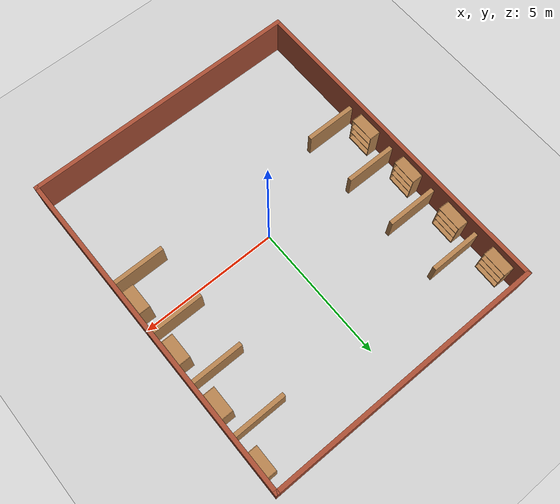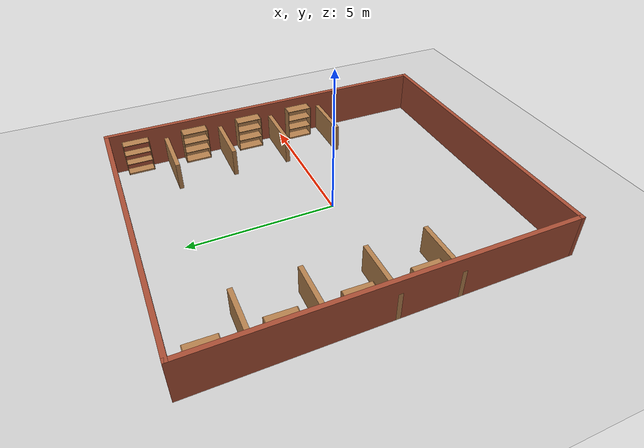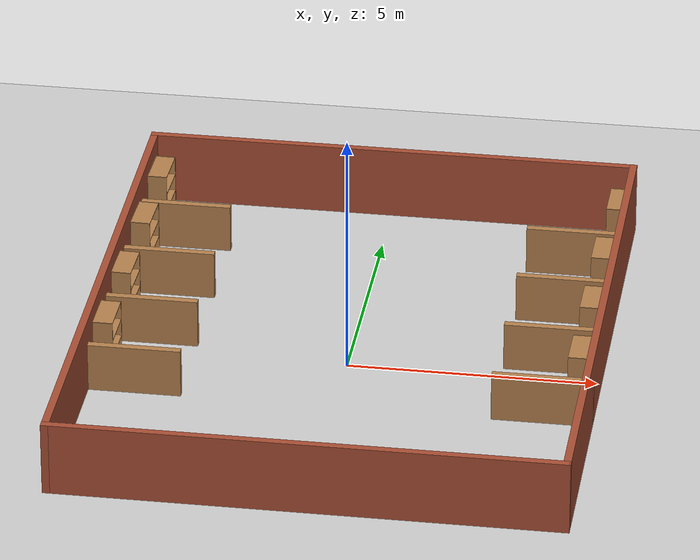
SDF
<sdf version="1.7">
 <world name="default">
  <model name="ground_plane">
   <static>1</static>
   <link name="link">
    <collision name="collision">
     <geometry><plane><normal>0 0 1</normal><size>100 100</size></plane></geometry>
     <surface>
      <contact><collide_bitmask>65535</collide_bitmask></contact>
      <friction><ode><mu>100</mu><mu2>50</mu2></ode></friction>
     </surface>
    </collision>
    <visual name="visual">
     <cast_shadows>0</cast_shadows>
     <geometry><plane><normal>0 0 1</normal><size>100 100</size></plane></geometry>
     <material>
      <script><uri>file://media/materials/scripts/gazebo.material</uri><name>Gazebo/Grey</name></script>
     </material>
    </visual>
   </link>
  </model>
  <gravity>0 0 -9.8</gravity>
  <magnetic_field>6e-06 2.3e-05 -4.2e-05</magnetic_field>
  <atmosphere type="adiabatic"/>
  <physics type="ode">
   <max_step_size>0.001</max_step_size>
   <real_time_factor>1</real_time_factor>
   <real_time_update_rate>1000</real_time_update_rate>
  </physics>
  <scene><ambient>0.4 0.4 0.4 1</ambient><background>0.7 0.7 0.7 1</background><shadows>1</shadows></scene>
  <audio><device>default</device></audio>
  <spherical_coordinates>
   <surface_model>EARTH_WGS84</surface_model>
   <latitude_deg>0</latitude_deg>
   <longitude_deg>0</longitude_deg>
   <elevation>0</elevation>
   <heading_deg>0</heading_deg>
  </spherical_coordinates>
  <model name="SDP_world">
   <pose>0.006205 0.41004 0 0 -0 0</pose>
   <link name="Wall_0">
    <collision name="Wall_0_Collision">
     <geometry><box><size>10.15 0.15 1.5</size></box></geometry>
     <pose>0 0 0.75 0 -0 0</pose>
    </collision>
    <visual name="Wall_0_Visual">
     <pose>0 0 0.75 0 -0 0</pose>
     <geometry><box><size>10.15 0.15 1.5</size></box></geometry>
     <material>
      <script><uri>file://media/materials/scripts/gazebo.material</uri><name>Gazebo/Bricks</name></script>
      <ambient>1 1 1 1</ambient>
     </material>
     <meta><layer>0</layer></meta>
    </visual>
    <pose>0 -6 0 0 -0 3.14159</pose>
   </link>
   <link name="Wall_13">
    <collision name="Wall_13_Collision">
     <geometry><box><size>10.15 0.15 1.5</size></box></geometry>
     <pose>0 0 0.75 0 -0 0</pose>
    </collision>
    <visual name="Wall_13_Visual">
     <pose>0 0 0.75 0 -0 0</pose>
     <geometry><box><size>10.15 0.15 1.5</size></box></geometry>
     <material>
      <script><uri>file://media/materials/scripts/gazebo.material</uri><name>Gazebo/Bricks</name></script>
      <ambient>1 1 1 1</ambient>
     </material>
     <meta><layer>0</layer></meta>
    </visual>
    <pose>0 6 0 0 -0 0</pose>
   </link>
   <link name="Wall_14">
    <collision name="Wall_14_Collision">
     <geometry><box><size>12.15 0.15 1.5</size></box></geometry>
     <pose>0 0 0.75 0 -0 0</pose>
    </collision>
    <visual name="Wall_14_Visual">
     <pose>0 0 0.75 0 -0 0</pose>
     <geometry><box><size>12.15 0.15 1.5</size></box></geometry>
     <material>
      <script><uri>file://media/materials/scripts/gazebo.material</uri><name>Gazebo/Bricks</name></script>
      <ambient>1 1 1 1</ambient>
     </material>
     <meta><layer>0</layer></meta>
    </visual>
    <pose>5 0 0 0 -0 -1.5708</pose>
   </link>
   <link name="Wall_28">
    <collision name="Wall_28_Collision">
     <geometry><box><size>2 0.15 1</size></box></geometry>
     <pose>0 0 0.5 0 -0 0</pose>
    </collision>
    <visual name="Wall_28_Visual">
     <pose>0 0 0.5 0 -0 0</pose>
     <geometry><box><size>2 0.15 1</size></box></geometry>
     <material>
      <script><uri>file://media/materials/scripts/gazebo.material</uri><name>Gazebo/Wood</name></script>
      <ambient>1 1 1 1</ambient>
     </material>
     <meta><layer>0</layer></meta>
    </visual>
    <pose>-4.075 4 0 0 -0 0</pose>
   </link>
   <link name="Wall_3">
    <collision name="Wall_3_Collision">
     <geometry><box><size>12.15 0.15 1.5</size></box></geometry>
     <pose>0 0 0.75 0 -0 0</pose>
    </collision>
    <visual name="Wall_3_Visual">
     <pose>0 0 0.75 0 -0 0</pose>
     <geometry><box><size>12.15 0.15 1.5</size></box></geometry>
     <material>
      <script><uri>file://media/materials/scripts/gazebo.material</uri><name>Gazebo/Bricks</name></script>
      <ambient>1 1 1 1</ambient>
     </material>
     <meta><layer>0</layer></meta>
    </visual>
    <pose>-5 0 0 0 -0 1.5708</pose>
   </link>
   <link name="Wall_30">
    <collision name="Wall_30_Collision">
     <geometry><box><size>2.001 0.15 1</size></box></geometry>
     <pose>0 0 0.5 0 -0 0</pose>
    </collision>
    <visual name="Wall_30_Visual">
     <pose>0 0 0.5 0 -0 0</pose>
     <geometry><box><size>2.001 0.15 1</size></box></geometry>
     <material>
      <script><uri>file://media/materials/scripts/gazebo.material</uri><name>Gazebo/Wood</name></script>
      <ambient>1 1 1 1</ambient>
     </material>
     <meta><layer>0</layer></meta>
    </visual>
    <pose>-4.0745 2 0 0 -0 0</pose>
   </link>
   <link name="Wall_32">
    <collision name="Wall_32_Collision">
     <geometry><box><size>2 0.15 1</size></box></geometry>
     <pose>0 0 0.5 0 -0 0</pose>
    </collision>
    <visual name="Wall_32_Visual">
     <pose>0 0 0.5 0 -0 0</pose>
     <geometry><box><size>2 0.15 1</size></box></geometry>
     <material>
      <script><uri>file://media/materials/scripts/gazebo.material</uri><name>Gazebo/Wood</name></script>
      <ambient>1 1 1 1</ambient>
     </material>
     <meta><layer>0</layer></meta>
    </visual>
    <pose>-4.075 0 0 0 -0 0</pose>
   </link>
   <link name="Wall_34">
    <collision name="Wall_34_Collision">
     <geometry><box><size>2 0.15 1</size></box></geometry>
     <pose>0 0 0.5 0 -0 0</pose>
    </collision>
    <visual name="Wall_34_Visual">
     <pose>0 0 0.5 0 -0 0</pose>
     <geometry><box><size>2 0.15 1</size></box></geometry>
     <material>
      <script><uri>file://media/materials/scripts/gazebo.material</uri><name>Gazebo/Wood</name></script>
      <ambient>1 1 1 1</ambient>
     </material>
     <meta><layer>0</layer></meta>
    </visual>
    <pose>-4.075 -2 0 0 -0 0</pose>
   </link>
   <link name="Wall_36">
    <collision name="Wall_36_Collision">
     <geometry><box><size>2.03 0.15 1</size></box></geometry>
     <pose>0 0 0.5 0 -0 0</pose>
    </collision>
    <visual name="Wall_36_Visual">
     <pose>0 0 0.5 0 -0 0</pose>
     <geometry><box><size>2.03 0.15 1</size></box></geometry>
     <material>
      <script><uri>file://media/materials/scripts/gazebo.material</uri><name>Gazebo/Wood</name></script>
      <ambient>1 1 1 1</ambient>
     </material>
     <meta><layer>0</layer></meta>
    </visual>
    <pose>4.06 4 0 0 -0 0</pose>
   </link>
   <link name="Wall_38">
    <collision name="Wall_38_Collision">
     <geometry><box><size>2 0.15 1</size></box></geometry>
     <pose>0 0 0.5 0 -0 0</pose>
    </collision>
    <visual name="Wall_38_Visual">
     <pose>0 0 0.5 0 -0 0</pose>
     <geometry><box><size>2 0.15 1</size></box></geometry>
     <material>
      <script><uri>file://media/materials/scripts/gazebo.material</uri><name>Gazebo/Wood</name></script>
      <ambient>1 1 1 1</ambient>
     </material>
     <meta><layer>0</layer></meta>
    </visual>
    <pose>4.075 2 0 0 -0 3.14159</pose>
   </link>
   <link name="Wall_40">
    <collision name="Wall_40_Collision">
     <geometry><box><size>2 0.15 1</size></box></geometry>
     <pose>0 0 0.5 0 -0 0</pose>
    </collision>
    <visual name="Wall_40_Visual">
     <pose>0 0 0.5 0 -0 0</pose>
     <geometry><box><size>2 0.15 1</size></box></geometry>
     <material>
      <script><uri>file://media/materials/scripts/gazebo.material</uri><name>Gazebo/Wood</name></script>
      <ambient>1 1 1 1</ambient>
     </material>
     <meta><layer>0</layer></meta>
    </visual>
    <pose>4.075 0 0 0 -0 3.14159</pose>
   </link>
   <link name="Wall_42">
    <collision name="Wall_42_Collision">
     <geometry><box><size>2 0.15 1</size></box></geometry>
     <pose>0 0 0.5 0 -0 0</pose>
    </collision>
    <visual name="Wall_42_Visual">
     <pose>0 0 0.5 0 -0 0</pose>
     <geometry><box><size>2 0.15 1</size></box></geometry>
     <material>
      <script><uri>file://media/materials/scripts/gazebo.material</uri><name>Gazebo/Wood</name></script>
      <ambient>1 1 1 1</ambient>
     </material>
     <meta><layer>0</layer></meta>
    </visual>
    <pose>4.075 -2 0 0 -0 3.14159</pose>
   </link>
   <static>1</static>
  </model>
  <light name="sun" type="directional">
   <pose>0.295893 -1.88162 10 0 -0 0</pose>
   <diffuse>0.8 0.8 0.8 1</diffuse>
   <specular>0.2 0.2 0.2 1</specular>
   <attenuation>
    <range>1000</range>
    <constant>0.9</constant>
    <linear>0.01</linear>
    <quadratic>0.001</quadratic>
   </attenuation>
   <direction>-0.5 0.1 -0.9</direction>
   <spot><inner_angle>0</inner_angle><outer_angle>0</outer_angle><falloff>0</falloff></spot>
  </light>
  <model name="bookshelf">
   <static>1</static>
   <link name="link">
    <inertial><mass>1</mass></inertial>
    <collision name="back">
     <pose>0 0.005 0.6 0 -0 0</pose>
     <geometry><box><size>0.9 0.01 1.2</size></box></geometry>
    </collision>
    <visual name="visual1">
     <pose>0 0.005 0.6 0 -0 0</pose>
     <geometry><box><size>0.9 0.01 1.2</size></box></geometry>
     <material>
      <script><uri>file://media/materials/scripts/gazebo.material</uri><name>Gazebo/Wood</name></script>
     </material>
    </visual>
    <collision name="left_side">
     <pose>0.45 -0.195 0.6 0 -0 0</pose>
     <geometry><box><size>0.02 0.4 1.2</size></box></geometry>
    </collision>
    <visual name="visual2">
     <pose>0.45 -0.195 0.6 0 -0 0</pose>
     <geometry><box><size>0.02 0.4 1.2</size></box></geometry>
     <material>
      <script><uri>file://media/materials/scripts/gazebo.material</uri><name>Gazebo/Wood</name></script>
     </material>
    </visual>
    <collision name="right_side">
     <pose>-0.45 -0.195 0.6 0 -0 0</pose>
     <geometry><box><size>0.02 0.4 1.2</size></box></geometry>
    </collision>
    <visual name="visual3">
     <pose>-0.45 -0.195 0.6 0 -0 0</pose>
     <geometry><box><size>0.02 0.4 1.2</size></box></geometry>
     <material>
      <script><uri>file://media/materials/scripts/gazebo.material</uri><name>Gazebo/Wood</name></script>
     </material>
    </visual>
    <collision name="bottom">
     <pose>0 -0.195 0.03 0 -0 0</pose>
     <geometry><box><size>0.88 0.4 0.06</size></box></geometry>
    </collision>
    <visual name="visual4">
     <pose>0 -0.195 0.03 0 -0 0</pose>
     <geometry><box><size>0.88 0.4 0.06</size></box></geometry>
     <material>
      <script><uri>file://media/materials/scripts/gazebo.material</uri><name>Gazebo/Wood</name></script>
     </material>
    </visual>
    <collision name="top">
     <pose>0 -0.195 1.19 0 -0 0</pose>
     <geometry><box><size>0.88 0.4 0.02</size></box></geometry>
    </collision>
    <visual name="visual5">
     <pose>0 -0.195 1.19 0 -0 0</pose>
     <geometry><box><size>0.88 0.4 0.02</size></box></geometry>
     <material>
      <script><uri>file://media/materials/scripts/gazebo.material</uri><name>Gazebo/Wood</name></script>
     </material>
    </visual>
    <collision name="low_shelf">
     <pose>0 -0.195 0.43 0 -0 0</pose>
     <geometry><box><size>0.88 0.4 0.02</size></box></geometry>
    </collision>
    <visual name="visual6">
     <pose>0 -0.195 0.43 0 -0 0</pose>
     <geometry><box><size>0.88 0.4 0.02</size></box></geometry>
     <material>
      <script><uri>file://media/materials/scripts/gazebo.material</uri><name>Gazebo/Wood</name></script>
     </material>
    </visual>
    <collision name="high_shelf">
     <pose>0 -0.195 0.8 0 -0 0</pose>
     <geometry><box><size>0.88 0.4 0.02</size></box></geometry>
    </collision>
    <visual name="visual7">
     <pose>0 -0.195 0.8 0 -0 0</pose>
     <geometry><box><size>0.88 0.4 0.02</size></box></geometry>
     <material>
      <script><uri>file://media/materials/scripts/gazebo.material</uri><name>Gazebo/Wood</name></script>
     </material>
    </visual>
   </link>
   <pose>-4.90843 -0.635952 0 0 -0 1.56335</pose>
  </model>
  <model name="bookshelf_clone">
   <static>1</static>
   <link name="link">
    <inertial><mass>1</mass></inertial>
    <collision name="back">
     <pose>0 0.005 0.6 0 -0 0</pose>
     <geometry><box><size>0.9 0.01 1.2</size></box></geometry>
    </collision>
    <visual name="visual1">
     <pose>0 0.005 0.6 0 -0 0</pose>
     <geometry><box><size>0.9 0.01 1.2</size></box></geometry>
     <material>
      <script><uri>file://media/materials/scripts/gazebo.material</uri><name>Gazebo/Wood</name></script>
     </material>
    </visual>
    <collision name="left_side">
     <pose>0.45 -0.195 0.6 0 -0 0</pose>
     <geometry><box><size>0.02 0.4 1.2</size></box></geometry>
    </collision>
    <visual name="visual2">
     <pose>0.45 -0.195 0.6 0 -0 0</pose>
     <geometry><box><size>0.02 0.4 1.2</size></box></geometry>
     <material>
      <script><uri>file://media/materials/scripts/gazebo.material</uri><name>Gazebo/Wood</name></script>
     </material>
    </visual>
    <collision name="right_side">
     <pose>-0.45 -0.195 0.6 0 -0 0</pose>
     <geometry><box><size>0.02 0.4 1.2</size></box></geometry>
    </collision>
    <visual name="visual3">
     <pose>-0.45 -0.195 0.6 0 -0 0</pose>
     <geometry><box><size>0.02 0.4 1.2</size></box></geometry>
     <material>
      <script><uri>file://media/materials/scripts/gazebo.material</uri><name>Gazebo/Wood</name></script>
     </material>
    </visual>
    <collision name="bottom">
     <pose>0 -0.195 0.03 0 -0 0</pose>
     <geometry><box><size>0.88 0.4 0.06</size></box></geometry>
    </collision>
    <visual name="visual4">
     <pose>0 -0.195 0.03 0 -0 0</pose>
     <geometry><box><size>0.88 0.4 0.06</size></box></geometry>
     <material>
      <script><uri>file://media/materials/scripts/gazebo.material</uri><name>Gazebo/Wood</name></script>
     </material>
    </visual>
    <collision name="top">
     <pose>0 -0.195 1.19 0 -0 0</pose>
     <geometry><box><size>0.88 0.4 0.02</size></box></geometry>
    </collision>
    <visual name="visual5">
     <pose>0 -0.195 1.19 0 -0 0</pose>
     <geometry><box><size>0.88 0.4 0.02</size></box></geometry>
     <material>
      <script><uri>file://media/materials/scripts/gazebo.material</uri><name>Gazebo/Wood</name></script>
     </material>
    </visual>
    <collision name="low_shelf">
     <pose>0 -0.195 0.43 0 -0 0</pose>
     <geometry><box><size>0.88 0.4 0.02</size></box></geometry>
    </collision>
    <visual name="visual6">
     <pose>0 -0.195 0.43 0 -0 0</pose>
     <geometry><box><size>0.88 0.4 0.02</size></box></geometry>
     <material>
      <script><uri>file://media/materials/scripts/gazebo.material</uri><name>Gazebo/Wood</name></script>
     </material>
    </visual>
    <collision name="high_shelf">
     <pose>0 -0.195 0.8 0 -0 0</pose>
     <geometry><box><size>0.88 0.4 0.02</size></box></geometry>
    </collision>
    <visual name="visual7">
     <pose>0 -0.195 0.8 0 -0 0</pose>
     <geometry><box><size>0.88 0.4 0.02</size></box></geometry>
     <material>
      <script><uri>file://media/materials/scripts/gazebo.material</uri><name>Gazebo/Wood</name></script>
     </material>
    </visual>
   </link>
   <pose>-4.90941 1.42748 0 0 -0 1.54588</pose>
  </model>
  <model name="bookshelf_clone_0">
   <static>1</static>
   <link name="link">
    <inertial><mass>1</mass></inertial>
    <collision name="back">
     <pose>0 0.005 0.6 0 -0 0</pose>
     <geometry><box><size>0.9 0.01 1.2</size></box></geometry>
    </collision>
    <visual name="visual1">
     <pose>0 0.005 0.6 0 -0 0</pose>
     <geometry><box><size>0.9 0.01 1.2</size></box></geometry>
     <material>
      <script><uri>file://media/materials/scripts/gazebo.material</uri><name>Gazebo/Wood</name></script>
     </material>
    </visual>
    <collision name="left_side">
     <pose>0.45 -0.195 0.6 0 -0 0</pose>
     <geometry><box><size>0.02 0.4 1.2</size></box></geometry>
    </collision>
    <visual name="visual2">
     <pose>0.45 -0.195 0.6 0 -0 0</pose>
     <geometry><box><size>0.02 0.4 1.2</size></box></geometry>
     <material>
      <script><uri>file://media/materials/scripts/gazebo.material</uri><name>Gazebo/Wood</name></script>
     </material>
    </visual>
    <collision name="right_side">
     <pose>-0.45 -0.195 0.6 0 -0 0</pose>
     <geometry><box><size>0.02 0.4 1.2</size></box></geometry>
    </collision>
    <visual name="visual3">
     <pose>-0.45 -0.195 0.6 0 -0 0</pose>
     <geometry><box><size>0.02 0.4 1.2</size></box></geometry>
     <material>
      <script><uri>file://media/materials/scripts/gazebo.material</uri><name>Gazebo/Wood</name></script>
     </material>
    </visual>
    <collision name="bottom">
     <pose>0 -0.195 0.03 0 -0 0</pose>
     <geometry><box><size>0.88 0.4 0.06</size></box></geometry>
    </collision>
    <visual name="visual4">
     <pose>0 -0.195 0.03 0 -0 0</pose>
     <geometry><box><size>0.88 0.4 0.06</size></box></geometry>
     <material>
      <script><uri>file://media/materials/scripts/gazebo.material</uri><name>Gazebo/Wood</name></script>
     </material>
    </visual>
    <collision name="top">
     <pose>0 -0.195 1.19 0 -0 0</pose>
     <geometry><box><size>0.88 0.4 0.02</size></box></geometry>
    </collision>
    <visual name="visual5">
     <pose>0 -0.195 1.19 0 -0 0</pose>
     <geometry><box><size>0.88 0.4 0.02</size></box></geometry>
     <material>
      <script><uri>file://media/materials/scripts/gazebo.material</uri><name>Gazebo/Wood</name></script>
     </material>
    </visual>
    <collision name="low_shelf">
     <pose>0 -0.195 0.43 0 -0 0</pose>
     <geometry><box><size>0.88 0.4 0.02</size></box></geometry>
    </collision>
    <visual name="visual6">
     <pose>0 -0.195 0.43 0 -0 0</pose>
     <geometry><box><size>0.88 0.4 0.02</size></box></geometry>
     <material>
      <script><uri>file://media/materials/scripts/gazebo.material</uri><name>Gazebo/Wood</name></script>
     </material>
    </visual>
    <collision name="high_shelf">
     <pose>0 -0.195 0.8 0 -0 0</pose>
     <geometry><box><size>0.88 0.4 0.02</size></box></geometry>
    </collision>
    <visual name="visual7">
     <pose>0 -0.195 0.8 0 -0 0</pose>
     <geometry><box><size>0.88 0.4 0.02</size></box></geometry>
     <material>
      <script><uri>file://media/materials/scripts/gazebo.material</uri><name>Gazebo/Wood</name></script>
     </material>
    </visual>
   </link>
   <pose>-4.89468 3.5345 0 0 -0 1.54588</pose>
  </model>
  <model name="bookshelf_clone_1">
   <static>1</static>
   <link name="link">
    <inertial><mass>1</mass></inertial>
    <collision name="back">
     <pose>0 0.005 0.6 0 -0 0</pose>
     <geometry><box><size>0.9 0.01 1.2</size></box></geometry>
    </collision>
    <visual name="visual1">
     <pose>0 0.005 0.6 0 -0 0</pose>
     <geometry><box><size>0.9 0.01 1.2</size></box></geometry>
     <material>
      <script><uri>file://media/materials/scripts/gazebo.material</uri><name>Gazebo/Wood</name></script>
     </material>
    </visual>
    <collision name="left_side">
     <pose>0.45 -0.195 0.6 0 -0 0</pose>
     <geometry><box><size>0.02 0.4 1.2</size></box></geometry>
    </collision>
    <visual name="visual2">
     <pose>0.45 -0.195 0.6 0 -0 0</pose>
     <geometry><box><size>0.02 0.4 1.2</size></box></geometry>
     <material>
      <script><uri>file://media/materials/scripts/gazebo.material</uri><name>Gazebo/Wood</name></script>
     </material>
    </visual>
    <collision name="right_side">
     <pose>-0.45 -0.195 0.6 0 -0 0</pose>
     <geometry><box><size>0.02 0.4 1.2</size></box></geometry>
    </collision>
    <visual name="visual3">
     <pose>-0.45 -0.195 0.6 0 -0 0</pose>
     <geometry><box><size>0.02 0.4 1.2</size></box></geometry>
     <material>
      <script><uri>file://media/materials/scripts/gazebo.material</uri><name>Gazebo/Wood</name></script>
     </material>
    </visual>
    <collision name="bottom">
     <pose>0 -0.195 0.03 0 -0 0</pose>
     <geometry><box><size>0.88 0.4 0.06</size></box></geometry>
    </collision>
    <visual name="visual4">
     <pose>0 -0.195 0.03 0 -0 0</pose>
     <geometry><box><size>0.88 0.4 0.06</size></box></geometry>
     <material>
      <script><uri>file://media/materials/scripts/gazebo.material</uri><name>Gazebo/Wood</name></script>
     </material>
    </visual>
    <collision name="top">
     <pose>0 -0.195 1.19 0 -0 0</pose>
     <geometry><box><size>0.88 0.4 0.02</size></box></geometry>
    </collision>
    <visual name="visual5">
     <pose>0 -0.195 1.19 0 -0 0</pose>
     <geometry><box><size>0.88 0.4 0.02</size></box></geometry>
     <material>
      <script><uri>file://media/materials/scripts/gazebo.material</uri><name>Gazebo/Wood</name></script>
     </material>
    </visual>
    <collision name="low_shelf">
     <pose>0 -0.195 0.43 0 -0 0</pose>
     <geometry><box><size>0.88 0.4 0.02</size></box></geometry>
    </collision>
    <visual name="visual6">
     <pose>0 -0.195 0.43 0 -0 0</pose>
     <geometry><box><size>0.88 0.4 0.02</size></box></geometry>
     <material>
      <script><uri>file://media/materials/scripts/gazebo.material</uri><name>Gazebo/Wood</name></script>
     </material>
    </visual>
    <collision name="high_shelf">
     <pose>0 -0.195 0.8 0 -0 0</pose>
     <geometry><box><size>0.88 0.4 0.02</size></box></geometry>
    </collision>
    <visual name="visual7">
     <pose>0 -0.195 0.8 0 -0 0</pose>
     <geometry><box><size>0.88 0.4 0.02</size></box></geometry>
     <material>
      <script><uri>file://media/materials/scripts/gazebo.material</uri><name>Gazebo/Wood</name></script>
     </material>
    </visual>
   </link>
   <pose>-4.90093 5.54696 0 0 -0 1.54588</pose>
  </model>
  <model name="bookshelf_clone_2">
   <static>1</static>
   <link name="link">
    <inertial><mass>1</mass></inertial>
    <collision name="back">
     <pose>0 0.005 0.6 0 -0 0</pose>
     <geometry><box><size>0.9 0.01 1.2</size></box></geometry>
    </collision>
    <visual name="visual1">
     <pose>0 0.005 0.6 0 -0 0</pose>
     <geometry><box><size>0.9 0.01 1.2</size></box></geometry>
     <material>
      <script><uri>file://media/materials/scripts/gazebo.material</uri><name>Gazebo/Wood</name></script>
     </material>
    </visual>
    <collision name="left_side">
     <pose>0.45 -0.195 0.6 0 -0 0</pose>
     <geometry><box><size>0.02 0.4 1.2</size></box></geometry>
    </collision>
    <visual name="visual2">
     <pose>0.45 -0.195 0.6 0 -0 0</pose>
     <geometry><box><size>0.02 0.4 1.2</size></box></geometry>
     <material>
      <script><uri>file://media/materials/scripts/gazebo.material</uri><name>Gazebo/Wood</name></script>
     </material>
    </visual>
    <collision name="right_side">
     <pose>-0.45 -0.195 0.6 0 -0 0</pose>
     <geometry><box><size>0.02 0.4 1.2</size></box></geometry>
    </collision>
    <visual name="visual3">
     <pose>-0.45 -0.195 0.6 0 -0 0</pose>
     <geometry><box><size>0.02 0.4 1.2</size></box></geometry>
     <material>
      <script><uri>file://media/materials/scripts/gazebo.material</uri><name>Gazebo/Wood</name></script>
     </material>
    </visual>
    <collision name="bottom">
     <pose>0 -0.195 0.03 0 -0 0</pose>
     <geometry><box><size>0.88 0.4 0.06</size></box></geometry>
    </collision>
    <visual name="visual4">
     <pose>0 -0.195 0.03 0 -0 0</pose>
     <geometry><box><size>0.88 0.4 0.06</size></box></geometry>
     <material>
      <script><uri>file://media/materials/scripts/gazebo.material</uri><name>Gazebo/Wood</name></script>
     </material>
    </visual>
    <collision name="top">
     <pose>0 -0.195 1.19 0 -0 0</pose>
     <geometry><box><size>0.88 0.4 0.02</size></box></geometry>
    </collision>
    <visual name="visual5">
     <pose>0 -0.195 1.19 0 -0 0</pose>
     <geometry><box><size>0.88 0.4 0.02</size></box></geometry>
     <material>
      <script><uri>file://media/materials/scripts/gazebo.material</uri><name>Gazebo/Wood</name></script>
     </material>
    </visual>
    <collision name="low_shelf">
     <pose>0 -0.195 0.43 0 -0 0</pose>
     <geometry><box><size>0.88 0.4 0.02</size></box></geometry>
    </collision>
    <visual name="visual6">
     <pose>0 -0.195 0.43 0 -0 0</pose>
     <geometry><box><size>0.88 0.4 0.02</size></box></geometry>
     <material>
      <script><uri>file://media/materials/scripts/gazebo.material</uri><name>Gazebo/Wood</name></script>
     </material>
    </visual>
    <collision name="high_shelf">
     <pose>0 -0.195 0.8 0 -0 0</pose>
     <geometry><box><size>0.88 0.4 0.02</size></box></geometry>
    </collision>
    <visual name="visual7">
     <pose>0 -0.195 0.8 0 -0 0</pose>
     <geometry><box><size>0.88 0.4 0.02</size></box></geometry>
     <material>
      <script><uri>file://media/materials/scripts/gazebo.material</uri><name>Gazebo/Wood</name></script>
     </material>
    </visual>
   </link>
   <pose>5 5.5 0 0 0 -1.5755</pose>
  </model>
  <model name="bookshelf_clone_2_clone">
   <static>1</static>
   <link name="link">
    <inertial><mass>1</mass></inertial>
    <collision name="back">
     <pose>0 0.005 0.6 0 -0 0</pose>
     <geometry><box><size>0.9 0.01 1.2</size></box></geometry>
    </collision>
    <visual name="visual1">
     <pose>0 0.005 0.6 0 -0 0</pose>
     <geometry><box><size>0.9 0.01 1.2</size></box></geometry>
     <material>
      <script><uri>file://media/materials/scripts/gazebo.material</uri><name>Gazebo/Wood</name></script>
     </material>
    </visual>
    <collision name="left_side">
     <pose>0.45 -0.195 0.6 0 -0 0</pose>
     <geometry><box><size>0.02 0.4 1.2</size></box></geometry>
    </collision>
    <visual name="visual2">
     <pose>0.45 -0.195 0.6 0 -0 0</pose>
     <geometry><box><size>0.02 0.4 1.2</size></box></geometry>
     <material>
      <script><uri>file://media/materials/scripts/gazebo.material</uri><name>Gazebo/Wood</name></script>
     </material>
    </visual>
    <collision name="right_side">
     <pose>-0.45 -0.195 0.6 0 -0 0</pose>
     <geometry><box><size>0.02 0.4 1.2</size></box></geometry>
    </collision>
    <visual name="visual3">
     <pose>-0.45 -0.195 0.6 0 -0 0</pose>
     <geometry><box><size>0.02 0.4 1.2</size></box></geometry>
     <material>
      <script><uri>file://media/materials/scripts/gazebo.material</uri><name>Gazebo/Wood</name></script>
     </material>
    </visual>
    <collision name="bottom">
     <pose>0 -0.195 0.03 0 -0 0</pose>
     <geometry><box><size>0.88 0.4 0.06</size></box></geometry>
    </collision>
    <visual name="visual4">
     <pose>0 -0.195 0.03 0 -0 0</pose>
     <geometry><box><size>0.88 0.4 0.06</size></box></geometry>
     <material>
      <script><uri>file://media/materials/scripts/gazebo.material</uri><name>Gazebo/Wood</name></script>
     </material>
    </visual>
    <collision name="top">
     <pose>0 -0.195 1.19 0 -0 0</pose>
     <geometry><box><size>0.88 0.4 0.02</size></box></geometry>
    </collision>
    <visual name="visual5">
     <pose>0 -0.195 1.19 0 -0 0</pose>
     <geometry><box><size>0.88 0.4 0.02</size></box></geometry>
     <material>
      <script><uri>file://media/materials/scripts/gazebo.material</uri><name>Gazebo/Wood</name></script>
     </material>
    </visual>
    <collision name="low_shelf">
     <pose>0 -0.195 0.43 0 -0 0</pose>
     <geometry><box><size>0.88 0.4 0.02</size></box></geometry>
    </collision>
    <visual name="visual6">
     <pose>0 -0.195 0.43 0 -0 0</pose>
     <geometry><box><size>0.88 0.4 0.02</size></box></geometry>
     <material>
      <script><uri>file://media/materials/scripts/gazebo.material</uri><name>Gazebo/Wood</name></script>
     </material>
    </visual>
    <collision name="high_shelf">
     <pose>0 -0.195 0.8 0 -0 0</pose>
     <geometry><box><size>0.88 0.4 0.02</size></box></geometry>
    </collision>
    <visual name="visual7">
     <pose>0 -0.195 0.8 0 -0 0</pose>
     <geometry><box><size>0.88 0.4 0.02</size></box></geometry>
     <material>
      <script><uri>file://media/materials/scripts/gazebo.material</uri><name>Gazebo/Wood</name></script>
     </material>
    </visual>
   </link>
   <pose>4.91429 3.40788 0 0 0 -1.5755</pose>
  </model>
  <model name="bookshelf_clone_2_clone_0">
   <static>1</static>
   <link name="link">
    <inertial><mass>1</mass></inertial>
    <collision name="back">
     <pose>0 0.005 0.6 0 -0 0</pose>
     <geometry><box><size>0.9 0.01 1.2</size></box></geometry>
    </collision>
    <visual name="visual1">
     <pose>0 0.005 0.6 0 -0 0</pose>
     <geometry><box><size>0.9 0.01 1.2</size></box></geometry>
     <material>
      <script><uri>file://media/materials/scripts/gazebo.material</uri><name>Gazebo/Wood</name></script>
     </material>
    </visual>
    <collision name="left_side">
     <pose>0.45 -0.195 0.6 0 -0 0</pose>
     <geometry><box><size>0.02 0.4 1.2</size></box></geometry>
    </collision>
    <visual name="visual2">
     <pose>0.45 -0.195 0.6 0 -0 0</pose>
     <geometry><box><size>0.02 0.4 1.2</size></box></geometry>
     <material>
      <script><uri>file://media/materials/scripts/gazebo.material</uri><name>Gazebo/Wood</name></script>
     </material>
    </visual>
    <collision name="right_side">
     <pose>-0.45 -0.195 0.6 0 -0 0</pose>
     <geometry><box><size>0.02 0.4 1.2</size></box></geometry>
    </collision>
    <visual name="visual3">
     <pose>-0.45 -0.195 0.6 0 -0 0</pose>
     <geometry><box><size>0.02 0.4 1.2</size></box></geometry>
     <material>
      <script><uri>file://media/materials/scripts/gazebo.material</uri><name>Gazebo/Wood</name></script>
     </material>
    </visual>
    <collision name="bottom">
     <pose>0 -0.195 0.03 0 -0 0</pose>
     <geometry><box><size>0.88 0.4 0.06</size></box></geometry>
    </collision>
    <visual name="visual4">
     <pose>0 -0.195 0.03 0 -0 0</pose>
     <geometry><box><size>0.88 0.4 0.06</size></box></geometry>
     <material>
      <script><uri>file://media/materials/scripts/gazebo.material</uri><name>Gazebo/Wood</name></script>
     </material>
    </visual>
    <collision name="top">
     <pose>0 -0.195 1.19 0 -0 0</pose>
     <geometry><box><size>0.88 0.4 0.02</size></box></geometry>
    </collision>
    <visual name="visual5">
     <pose>0 -0.195 1.19 0 -0 0</pose>
     <geometry><box><size>0.88 0.4 0.02</size></box></geometry>
     <material>
      <script><uri>file://media/materials/scripts/gazebo.material</uri><name>Gazebo/Wood</name></script>
     </material>
    </visual>
    <collision name="low_shelf">
     <pose>0 -0.195 0.43 0 -0 0</pose>
     <geometry><box><size>0.88 0.4 0.02</size></box></geometry>
    </collision>
    <visual name="visual6">
     <pose>0 -0.195 0.43 0 -0 0</pose>
     <geometry><box><size>0.88 0.4 0.02</size></box></geometry>
     <material>
      <script><uri>file://media/materials/scripts/gazebo.material</uri><name>Gazebo/Wood</name></script>
     </material>
    </visual>
    <collision name="high_shelf">
     <pose>0 -0.195 0.8 0 -0 0</pose>
     <geometry><box><size>0.88 0.4 0.02</size></box></geometry>
    </collision>
    <visual name="visual7">
     <pose>0 -0.195 0.8 0 -0 0</pose>
     <geometry><box><size>0.88 0.4 0.02</size></box></geometry>
     <material>
      <script><uri>file://media/materials/scripts/gazebo.material</uri><name>Gazebo/Wood</name></script>
     </material>
    </visual>
   </link>
   <pose>4.91279 1.35896 0 0 0 -1.5755</pose>
  </model>
  <model name="bookshelf_clone_2_clone_1">
   <static>1</static>
   <link name="link">
    <inertial><mass>1</mass></inertial>
    <collision name="back">
     <pose>0 0.005 0.6 0 -0 0</pose>
     <geometry><box><size>0.9 0.01 1.2</size></box></geometry>
    </collision>
    <visual name="visual1">
     <pose>0 0.005 0.6 0 -0 0</pose>
     <geometry><box><size>0.9 0.01 1.2</size></box></geometry>
     <material>
      <script><uri>file://media/materials/scripts/gazebo.material</uri><name>Gazebo/Wood</name></script>
     </material>
    </visual>
    <collision name="left_side">
     <pose>0.45 -0.195 0.6 0 -0 0</pose>
     <geometry><box><size>0.02 0.4 1.2</size></box></geometry>
    </collision>
    <visual name="visual2">
     <pose>0.45 -0.195 0.6 0 -0 0</pose>
     <geometry><box><size>0.02 0.4 1.2</size></box></geometry>
     <material>
      <script><uri>file://media/materials/scripts/gazebo.material</uri><name>Gazebo/Wood</name></script>
     </material>
    </visual>
    <collision name="right_side">
     <pose>-0.45 -0.195 0.6 0 -0 0</pose>
     <geometry><box><size>0.02 0.4 1.2</size></box></geometry>
    </collision>
    <visual name="visual3">
     <pose>-0.45 -0.195 0.6 0 -0 0</pose>
     <geometry><box><size>0.02 0.4 1.2</size></box></geometry>
     <material>
      <script><uri>file://media/materials/scripts/gazebo.material</uri><name>Gazebo/Wood</name></script>
     </material>
    </visual>
    <collision name="bottom">
     <pose>0 -0.195 0.03 0 -0 0</pose>
     <geometry><box><size>0.88 0.4 0.06</size></box></geometry>
    </collision>
    <visual name="visual4">
     <pose>0 -0.195 0.03 0 -0 0</pose>
     <geometry><box><size>0.88 0.4 0.06</size></box></geometry>
     <material>
      <script><uri>file://media/materials/scripts/gazebo.material</uri><name>Gazebo/Wood</name></script>
     </material>
    </visual>
    <collision name="top">
     <pose>0 -0.195 1.19 0 -0 0</pose>
     <geometry><box><size>0.88 0.4 0.02</size></box></geometry>
    </collision>
    <visual name="visual5">
     <pose>0 -0.195 1.19 0 -0 0</pose>
     <geometry><box><size>0.88 0.4 0.02</size></box></geometry>
     <material>
      <script><uri>file://media/materials/scripts/gazebo.material</uri><name>Gazebo/Wood</name></script>
     </material>
    </visual>
    <collision name="low_shelf">
     <pose>0 -0.195 0.43 0 -0 0</pose>
     <geometry><box><size>0.88 0.4 0.02</size></box></geometry>
    </collision>
    <visual name="visual6">
     <pose>0 -0.195 0.43 0 -0 0</pose>
     <geometry><box><size>0.88 0.4 0.02</size></box></geometry>
     <material>
      <script><uri>file://media/materials/scripts/gazebo.material</uri><name>Gazebo/Wood</name></script>
     </material>
    </visual>
    <collision name="high_shelf">
     <pose>0 -0.195 0.8 0 -0 0</pose>
     <geometry><box><size>0.88 0.4 0.02</size></box></geometry>
    </collision>
    <visual name="visual7">
     <pose>0 -0.195 0.8 0 -0 0</pose>
     <geometry><box><size>0.88 0.4 0.02</size></box></geometry>
     <material>
      <script><uri>file://media/materials/scripts/gazebo.material</uri><name>Gazebo/Wood</name></script>
     </material>
    </visual>
   </link>
   <pose>4.9115 -0.662644 0 0 0 -1.5755</pose>
  </model>
 </world>
</sdf>
